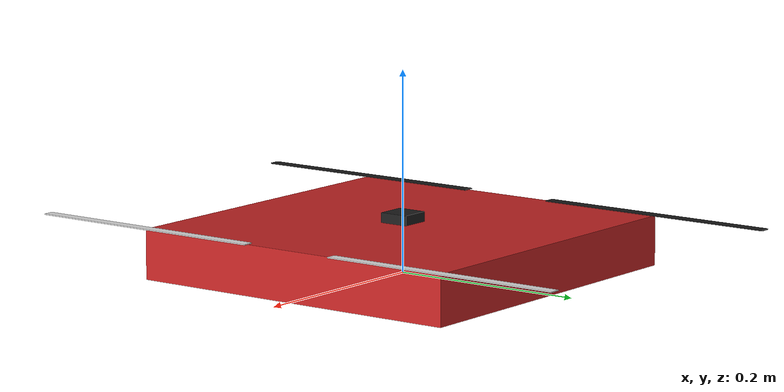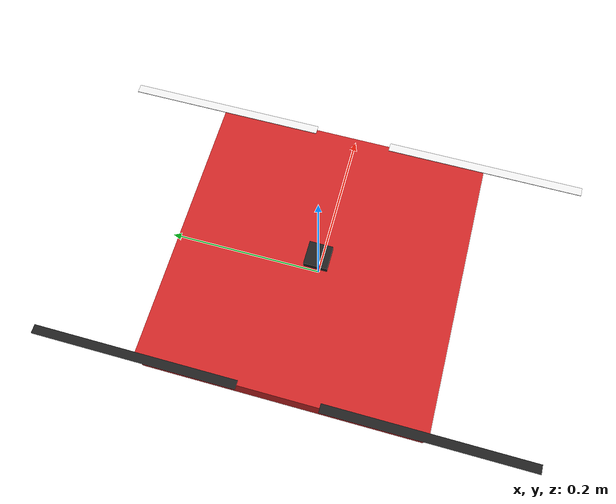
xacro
<?xml version="1.0"?>
<robot xmlns:xacro="http://www.ros.org/wiki/xacro" name="IDAS_quadrotor">

	<!-- load xacro files needed for fully define robot -->
	<xacro:include filename="$(find quadrotor)/urdf/material.xacro" />
	<xacro:include filename="$(find quadrotor)/urdf/IDAS_quadrotor.gazebo" />

	<!-- Define Xacro dependent constants -->
	<xacro:property name="width" value="0.354" />
	<xacro:property name="length" value="0.354" />
	<xacro:property name="height" value="0.05" />
	<xacro:property name="frame_mass" value="2" />
	<xacro:property name="propeller_mass" value="0.0055" />
	<xacro:property name="pi_value" value="3.14159263" />
	<xacro:property name="propeller_radius" value="0.127" />
	<xacro:property name="prop_loc" value="0.1767767" />

	<!-- Define inertial macro -->
	<xacro:macro name="default_inertial" params="mass p ix_value iy_value iz_value" >
		<inertial>
			<origin xyz="0 0 0" rpy="0 0 ${p}" />
			<mass value="${mass}" />
			<inertia ixx="${ix_value}"
					     ixy="0"           iyy="${iy_value}"
					     ixz="0"           iyz="0"           izz="${iz_value}" />
		</inertial>
	</xacro:macro>

	<!-- Frame of quadrotor (A red box!) -->
	<link name="frame">
		<visual>
			<origin xyz="0 0 ${height/2}" rpy="0 0 0" />
			<geometry>
				<box size="${width} ${length} ${height}" />
			</geometry>

			<material name="red" />
		</visual>

		<collision>
			<origin xyz="0 0 ${height/2}" rpy="0 0 0" />
			<geometry>
				<box size="${width} ${length} ${height}" />
			</geometry>

		</collision>

		<xacro:default_inertial mass="${frame_mass}" p="0" ix_value="${0.02130267}" iy_value="${0.02130267}" iz_value="${0.041772}" />
	</link>

	<!-- IMU Sensor link -->
	<link name="imu_link">
		<visual>
			<origin xyz="0 0 0" rpy="0 0 0" />
			<geometry>
				<box size="0.03 0.03 0.01" />
			</geometry>
			<material name="black"/>
		</visual>
		<collision>
			<origin xyz="0 0 0" rpy="0 0 0"/>
			<geometry>
				<box size="0.03 0.03 0.01" />
			</geometry>
			<xacro:default_inertial mass="0" p="0" ix_value="0" iy_value="0" iz_value="0" />
		</collision>
	</link>

	<!-- Propellers (4 black boxes!) -->
	<link name="propeller_1">
		<visual>
			<origin xyz="0 0 0" rpy="0 0 0" />

			<geometry>
				<box size="${0.03302/3} ${2*propeller_radius} ${0.001}" />
			</geometry>

			<material name="white" />
		</visual>

		<collision>
			<origin xyz="0 0 0" rpy="0 0 0" />

			<geometry>
				<box size="${0.03302/3} ${2*propeller_radius} ${0.001}" />
			</geometry>
		</collision>
		<xacro:default_inertial mass="${propeller_mass}" p="0" ix_value="${7.3929e-6}" iy_value="${0}" iz_value="${7.4480e-6}" />
	</link>

	<link name="propeller_2">
		<visual>
			<origin xyz="0 0 0" rpy="0 0 0" />

			<geometry>
				<box size="${0.03302/3} ${2*propeller_radius} ${0.001}" />
			</geometry>

			<material name="black" />
		</visual>

		<collision>
			<origin xyz="0 0 0" rpy="0 0 0" />

			<geometry>
				<box size="${0.03302/3} ${2*propeller_radius} ${0.001}" />
			</geometry>
		</collision>
		<xacro:default_inertial mass="${propeller_mass}" p="0" ix_value="${7.3929e-6}" iy_value="${0}" iz_value="${7.4480e-6}" />
	</link>

	<link name="propeller_3">
		<visual>
			<origin xyz="0 0 0" rpy="0 0 0" />

			<geometry>
				<box size="${0.03302/3} ${2*propeller_radius} ${0.001}" />
			</geometry>

			<material name="black" />
		</visual>

		<collision>
			<origin xyz="0 0 0" rpy="0 0 0" />

			<geometry>
				<box size="${0.03302/3} ${2*propeller_radius} ${0.001}" />
			</geometry>
		</collision>
		<xacro:default_inertial mass="${propeller_mass}" p="0" ix_value="${7.3929e-6}" iy_value="${0}" iz_value="${7.4480e-6}" />
	</link>

	<link name="propeller_4">
		<visual>
			<origin xyz="0 0 0" rpy="0 0 0" />

			<geometry>
				<box size="${0.03302/3} ${2*propeller_radius} ${0.001}" />
			</geometry>

			<material name="white" />
		</visual>

		<collision>
			<origin xyz="0 0 0" rpy="0 0 0" />

			<geometry>
				<box size="${0.03302/3} ${2*propeller_radius} ${0.001}" />
			</geometry>
		</collision>
		<xacro:default_inertial mass="${propeller_mass}" p="0" ix_value="${7.3929e-6}" iy_value="${0}" iz_value="${7.4480e-6}" />
	</link>

	<!-- Define joint between props and frame -->
	<!-- NOTE: it is essential to check where is each propeller.
	           signs in "flight_modes" package and gazebo plugin
	           "PropPlugin" should match! -->
	<joint name="joint_propeller_1" type="continuous">
		<parent link="frame" />
		<child link="propeller_1" />
		<origin xyz="${prop_loc} ${prop_loc} ${height+(0.001/2)}" rpy="0 0 0"/>
		<axis xyz="0 0 1" />
	</joint>

	<joint name="joint_propeller_2" type="continuous">
		<parent link="frame" />
		<child link="propeller_2" />
		<origin xyz="${-prop_loc} ${prop_loc} ${height+(0.001/2)}" rpy="0 0 0" />
		<axis xyz="0 0 1" />
	</joint>

	<joint name="joint_propeller_3" type="continuous">
		<parent link="frame" />
		<child link="propeller_3" />
		<origin xyz="${-prop_loc} ${-prop_loc} ${height+(0.001/2)}" rpy="0 0 0" />
		<axis xyz="0 0 1" />
	</joint>

	<joint name="joint_propeller_4" type="continuous">
		<parent link="frame" />
		<child link="propeller_4" />
		<origin xyz="${prop_loc} ${-prop_loc} ${height+(0.001/2)}" rpy="0 0 0" />
		<axis xyz="0 0 1" />
	</joint>

	<joint name="imu_joint" type="fixed">
		<parent link="frame" />
		<child link="imu_link" />
		<origin xyz="0 0 ${height+0.005}" rpy="0 0 0" />
	</joint>
	<!-- Define Transmission Element for Propellers -->
	<transmission name="motor_1">
		<type>transmission_interface/SimpleTransmission</type>

		<joint name="joint_propeller_1">
			<hardwareInterface>hardware_interface/VelocityJointInterface</hardwareInterface>
		</joint>

		<actuator name="BLDC_motor1">
			<hardwareInterface>hardware_interface/VelocityJointInterface</hardwareInterface>
			<mechanicalReduction>1</mechanicalReduction>
		</actuator>
	</transmission>

	<transmission name="motor_2">
		<type>transmission_interface/SimpleTransmission</type>

		<joint name="joint_propeller_2">
			<hardwareInterface>hardware_interface/VelocityJointInterface</hardwareInterface>
		</joint>

		<actuator name="BLDC_motor2">
			<hardwareInterface>hardware_interface/VelocityJointInterface</hardwareInterface>
			<mechanicalReduction>1</mechanicalReduction>
		</actuator>
	</transmission>

	<transmission name="motor_3">
		<type>transmission_interface/SimpleTransmission</type>

		<joint name="joint_propeller_3">
			<hardwareInterface>hardware_interface/VelocityJointInterface</hardwareInterface>
		</joint>

		<actuator name="BLDC_motor3">
			<hardwareInterface>hardware_interface/VelocityJointInterface</hardwareInterface>
			<mechanicalReduction>1</mechanicalReduction>
		</actuator>
	</transmission>

	<transmission name="motor_4">
		<type>transmission_interface/SimpleTransmission</type>

		<joint name="joint_propeller_4">
			<hardwareInterface>hardware_interface/VelocityJointInterface</hardwareInterface>
		</joint>

		<actuator name="BLDC_motor4">
			<hardwareInterface>hardware_interface/VelocityJointInterface</hardwareInterface>
			<mechanicalReduction>1</mechanicalReduction>
		</actuator>
	</transmission>
</robot>
